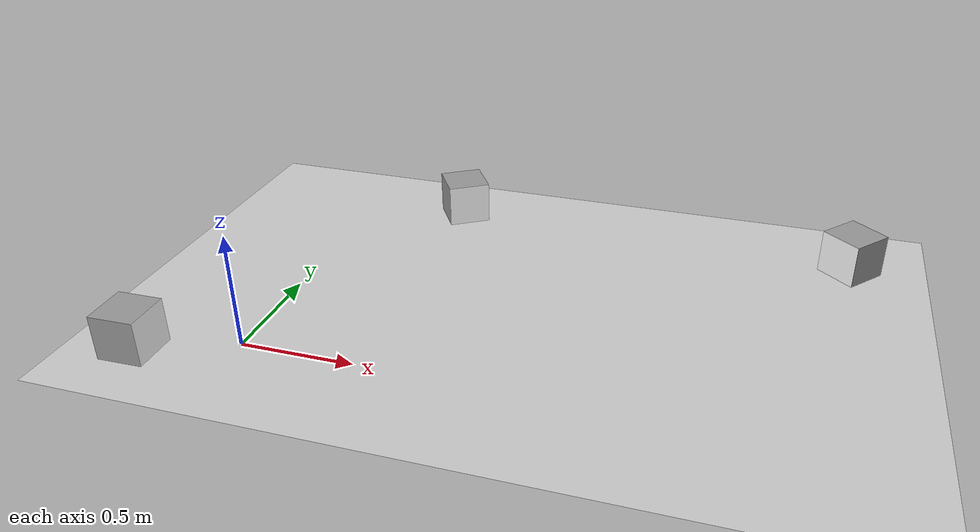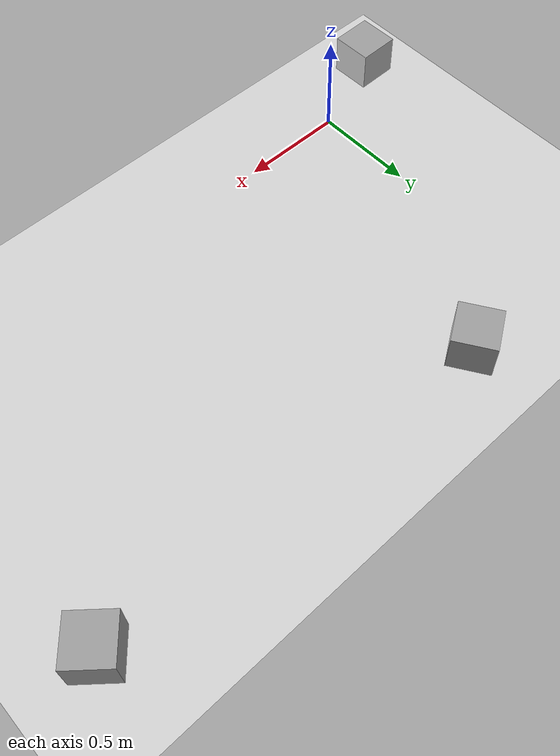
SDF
<sdf version="1.7">
 <world name="default">
  <model name="ground_plane">
   <static>1</static>
   <link name="link">
    <collision name="collision">
     <geometry><plane><normal>0 0 1</normal><size>100 100</size></plane></geometry>
     <surface>
      <contact><collide_bitmask>65535</collide_bitmask></contact>
      <friction><ode><mu>100</mu><mu2>50</mu2></ode></friction>
     </surface>
    </collision>
    <visual name="visual">
     <cast_shadows>0</cast_shadows>
     <geometry><plane><normal>0 0 1</normal><size>100 100</size></plane></geometry>
     <material>
      <script><uri>file://media/materials/scripts/gazebo.material</uri><name>Gazebo/Grey</name></script>
     </material>
    </visual>
   </link>
  </model>
  <model name="marker20_box">
   <link name="marker">
    <inertial>
     <mass>0.1</mass>
     <inertia><ixx>0</ixx><ixy>0</ixy><ixz>0</ixz><iyy>0</iyy><iyz>0</iyz><izz>0</izz></inertia>
    </inertial>
    <self_collide>1</self_collide>
    <pose>-0.76428 -0.101106 0.120004 -0.015494 1.56996 -0.015507</pose>
    <visual name="visual">
     <geometry><box><size>0.2 0.2 0.001</size></box></geometry>
     <material>
      <script>
       <uri>model://marker20/material/scripts</uri>
       <uri>model://marker20/material/textures</uri>
       <name>Aruco/marker20</name>
      </script>
      <shader type="pixel"><normal_map>__default__</normal_map></shader>
      <emissive>0 0 0 1</emissive>
      <ambient>1 1 1 1</ambient>
      <diffuse>1 1 1 1</diffuse>
      <specular>0 0 0 1</specular>
     </material>
    </visual>
    <collision name="collision">
     <geometry><box><size>0.2 0.2 0.02</size></box></geometry>
     <surface>
      <friction>
       <ode><mu>1</mu><mu2>1</mu2><fdir1>0 0 0</fdir1><slip1>0</slip1><slip2>0</slip2></ode>
       <torsional>
        <coefficient>1</coefficient>
        <patch_radius>0</patch_radius>
        <surface_radius>0</surface_radius>
        <use_patch_radius>1</use_patch_radius>
        <ode><slip>0</slip></ode>
       </torsional>
      </friction>
      <bounce><restitution_coefficient>0</restitution_coefficient><threshold>1e+06</threshold></bounce>
      <contact>
       <collide_without_contact>0</collide_without_contact>
       <collide_without_contact_bitmask>1</collide_without_contact_bitmask>
       <collide_bitmask>1</collide_bitmask>
       <ode>
        <soft_cfm>0</soft_cfm>
        <soft_erp>0.2</soft_erp>
        <kp>1e+13</kp>
        <kd>1</kd>
        <max_vel>0.01</max_vel>
        <min_depth>0</min_depth>
       </ode>
       <bullet>
        <split_impulse>1</split_impulse>
        <split_impulse_penetration_threshold>-0.01</split_impulse_penetration_threshold>
        <soft_cfm>0</soft_cfm>
        <soft_erp>0.2</soft_erp>
        <kp>1e+13</kp>
        <kd>1</kd>
       </bullet>
      </contact>
     </surface>
    </collision>
   </link>
   <link name="link_1">
    <inertial>
     <mass>1</mass>
     <inertia>
      <ixx>0.166667</ixx>
      <ixy>0</ixy>
      <ixz>0</ixz>
      <iyy>0.166667</iyy>
      <iyz>0</iyz>
      <izz>0.166667</izz>
     </inertia>
    </inertial>
    <pose>-0.86428 -0.101106 0.12 -1.3e-05 -4.2e-05 0</pose>
    <visual name="visual">
     <geometry><box><size>0.2 0.2 0.2</size></box></geometry>
     <material>
      <lighting>1</lighting>
      <script><uri>file://media/materials/scripts/gazebo.material</uri><name>Gazebo/Grey</name></script>
      <shader type="pixel"><normal_map>__default__</normal_map></shader>
      <emissive>0 0 0 1</emissive>
      <ambient>0.3 0.3 0.3 1</ambient>
      <diffuse>0.7 0.7 0.7 1</diffuse>
      <specular>0.01 0.01 0.01 1</specular>
     </material>
    </visual>
    <collision name="collision">
     <geometry><box><size>0.2 0.2 0.2</size></box></geometry>
     <surface>
      <friction>
       <ode><mu>1</mu><mu2>1</mu2><fdir1>0 0 0</fdir1><slip1>0</slip1><slip2>0</slip2></ode>
       <torsional>
        <coefficient>1</coefficient>
        <patch_radius>0</patch_radius>
        <surface_radius>0</surface_radius>
        <use_patch_radius>1</use_patch_radius>
        <ode><slip>0</slip></ode>
       </torsional>
      </friction>
      <bounce><restitution_coefficient>0</restitution_coefficient><threshold>1e+06</threshold></bounce>
      <contact>
       <collide_without_contact>0</collide_without_contact>
       <collide_without_contact_bitmask>1</collide_without_contact_bitmask>
       <collide_bitmask>1</collide_bitmask>
       <ode>
        <soft_cfm>0</soft_cfm>
        <soft_erp>0.2</soft_erp>
        <kp>1e+13</kp>
        <kd>1</kd>
        <max_vel>0.01</max_vel>
        <min_depth>0</min_depth>
       </ode>
       <bullet>
        <split_impulse>1</split_impulse>
        <split_impulse_penetration_threshold>-0.01</split_impulse_penetration_threshold>
        <soft_cfm>0</soft_cfm>
        <soft_erp>0.2</soft_erp>
        <kp>1e+13</kp>
        <kd>1</kd>
       </bullet>
      </contact>
     </surface>
    </collision>
   </link>
   <joint name="link_1_JOINT_3" type="fixed">
    <parent>link_1</parent>
    <child>marker</child>
    <physics>
     <ode><limit><cfm>0</cfm><erp>0.2</erp></limit><suspension><cfm>0</cfm><erp>0.2</erp></suspension></ode>
    </physics>
   </joint>
   <static>0</static>
   <pose>0.462113 -0.038567 -0.020009 1.6e-05 1.8e-05 0.018585</pose>
  </model>
  <model name="marker23_box">
   <link name="marker">
    <inertial>
     <mass>0.1</mass>
     <inertia><ixx>0</ixx><ixy>0</ixy><ixz>0</ixz><iyy>0</iyy><iyz>0</iyz><izz>0</izz></inertia>
    </inertial>
    <self_collide>1</self_collide>
    <pose>-0.76428 -0.101106 0.120004 -0.015494 1.56996 -0.015507</pose>
    <visual name="visual">
     <geometry><box><size>0.2 0.2 0.001</size></box></geometry>
     <material>
      <script>
       <uri>model://marker23/material/scripts</uri>
       <uri>model://marker23/material/textures</uri>
       <name>Aruco/marker23</name>
      </script>
      <shader type="pixel"><normal_map>__default__</normal_map></shader>
      <emissive>0 0 0 1</emissive>
      <ambient>1 1 1 1</ambient>
      <diffuse>1 1 1 1</diffuse>
      <specular>0 0 0 1</specular>
     </material>
    </visual>
    <collision name="collision">
     <geometry><box><size>0.2 0.2 0.02</size></box></geometry>
     <surface>
      <friction>
       <ode><mu>1</mu><mu2>1</mu2><fdir1>0 0 0</fdir1><slip1>0</slip1><slip2>0</slip2></ode>
       <torsional>
        <coefficient>1</coefficient>
        <patch_radius>0</patch_radius>
        <surface_radius>0</surface_radius>
        <use_patch_radius>1</use_patch_radius>
        <ode><slip>0</slip></ode>
       </torsional>
      </friction>
      <bounce><restitution_coefficient>0</restitution_coefficient><threshold>1e+06</threshold></bounce>
      <contact>
       <collide_without_contact>0</collide_without_contact>
       <collide_without_contact_bitmask>1</collide_without_contact_bitmask>
       <collide_bitmask>1</collide_bitmask>
       <ode>
        <soft_cfm>0</soft_cfm>
        <soft_erp>0.2</soft_erp>
        <kp>1e+13</kp>
        <kd>1</kd>
        <max_vel>0.01</max_vel>
        <min_depth>0</min_depth>
       </ode>
       <bullet>
        <split_impulse>1</split_impulse>
        <split_impulse_penetration_threshold>-0.01</split_impulse_penetration_threshold>
        <soft_cfm>0</soft_cfm>
        <soft_erp>0.2</soft_erp>
        <kp>1e+13</kp>
        <kd>1</kd>
       </bullet>
      </contact>
     </surface>
    </collision>
   </link>
   <link name="link_1">
    <inertial>
     <mass>1</mass>
     <inertia>
      <ixx>0.166667</ixx>
      <ixy>0</ixy>
      <ixz>0</ixz>
      <iyy>0.166667</iyy>
      <iyz>0</iyz>
      <izz>0.166667</izz>
     </inertia>
    </inertial>
    <pose>-0.86428 -0.101106 0.12 -1.3e-05 -4.2e-05 0</pose>
    <visual name="visual">
     <geometry><box><size>0.2 0.2 0.2</size></box></geometry>
     <material>
      <lighting>1</lighting>
      <script><uri>file://media/materials/scripts/gazebo.material</uri><name>Gazebo/Grey</name></script>
      <shader type="pixel"><normal_map>__default__</normal_map></shader>
      <emissive>0 0 0 1</emissive>
      <ambient>0.3 0.3 0.3 1</ambient>
      <diffuse>0.7 0.7 0.7 1</diffuse>
      <specular>0.01 0.01 0.01 1</specular>
     </material>
    </visual>
    <collision name="collision">
     <geometry><box><size>0.2 0.2 0.2</size></box></geometry>
     <surface>
      <friction>
       <ode><mu>1</mu><mu2>1</mu2><fdir1>0 0 0</fdir1><slip1>0</slip1><slip2>0</slip2></ode>
       <torsional>
        <coefficient>1</coefficient>
        <patch_radius>0</patch_radius>
        <surface_radius>0</surface_radius>
        <use_patch_radius>1</use_patch_radius>
        <ode><slip>0</slip></ode>
       </torsional>
      </friction>
      <bounce><restitution_coefficient>0</restitution_coefficient><threshold>1e+06</threshold></bounce>
      <contact>
       <collide_without_contact>0</collide_without_contact>
       <collide_without_contact_bitmask>1</collide_without_contact_bitmask>
       <collide_bitmask>1</collide_bitmask>
       <ode>
        <soft_cfm>0</soft_cfm>
        <soft_erp>0.2</soft_erp>
        <kp>1e+13</kp>
        <kd>1</kd>
        <max_vel>0.01</max_vel>
        <min_depth>0</min_depth>
       </ode>
       <bullet>
        <split_impulse>1</split_impulse>
        <split_impulse_penetration_threshold>-0.01</split_impulse_penetration_threshold>
        <soft_cfm>0</soft_cfm>
        <soft_erp>0.2</soft_erp>
        <kp>1e+13</kp>
        <kd>1</kd>
       </bullet>
      </contact>
     </surface>
    </collision>
   </link>
   <joint name="link_1_JOINT_3" type="fixed">
    <parent>link_1</parent>
    <child>marker</child>
    <physics>
     <ode><limit><cfm>0</cfm><erp>0.2</erp></limit><suspension><cfm>0</cfm><erp>0.2</erp></suspension></ode>
    </physics>
   </joint>
   <static>0</static>
   <pose>1.90893 0.605786 -0.020007 9e-06 1.7e-05 -2.2812</pose>
  </model>
  <model name="marker24_box">
   <link name="marker">
    <inertial>
     <mass>0.1</mass>
     <inertia><ixx>0</ixx><ixy>0</ixy><ixz>0</ixz><iyy>0</iyy><iyz>0</iyz><izz>0</izz></inertia>
    </inertial>
    <self_collide>1</self_collide>
    <pose>-0.76428 -0.101106 0.120004 -0.015494 1.56996 -0.015507</pose>
    <visual name="visual">
     <geometry><box><size>0.2 0.2 0.001</size></box></geometry>
     <material>
      <script>
       <uri>model://marker24/material/scripts</uri>
       <uri>model://marker24/material/textures</uri>
       <name>Aruco/marker24</name>
      </script>
      <shader type="pixel"><normal_map>__default__</normal_map></shader>
      <emissive>0 0 0 1</emissive>
      <ambient>1 1 1 1</ambient>
      <diffuse>1 1 1 1</diffuse>
      <specular>0 0 0 1</specular>
     </material>
    </visual>
    <collision name="collision">
     <geometry><box><size>0.2 0.2 0.02</size></box></geometry>
     <surface>
      <friction>
       <ode><mu>1</mu><mu2>1</mu2><fdir1>0 0 0</fdir1><slip1>0</slip1><slip2>0</slip2></ode>
       <torsional>
        <coefficient>1</coefficient>
        <patch_radius>0</patch_radius>
        <surface_radius>0</surface_radius>
        <use_patch_radius>1</use_patch_radius>
        <ode><slip>0</slip></ode>
       </torsional>
      </friction>
      <bounce><restitution_coefficient>0</restitution_coefficient><threshold>1e+06</threshold></bounce>
      <contact>
       <collide_without_contact>0</collide_without_contact>
       <collide_without_contact_bitmask>1</collide_without_contact_bitmask>
       <collide_bitmask>1</collide_bitmask>
       <ode>
        <soft_cfm>0</soft_cfm>
        <soft_erp>0.2</soft_erp>
        <kp>1e+13</kp>
        <kd>1</kd>
        <max_vel>0.01</max_vel>
        <min_depth>0</min_depth>
       </ode>
       <bullet>
        <split_impulse>1</split_impulse>
        <split_impulse_penetration_threshold>-0.01</split_impulse_penetration_threshold>
        <soft_cfm>0</soft_cfm>
        <soft_erp>0.2</soft_erp>
        <kp>1e+13</kp>
        <kd>1</kd>
       </bullet>
      </contact>
     </surface>
    </collision>
   </link>
   <link name="link_1">
    <inertial>
     <mass>1</mass>
     <inertia>
      <ixx>0.166667</ixx>
      <ixy>0</ixy>
      <ixz>0</ixz>
      <iyy>0.166667</iyy>
      <iyz>0</iyz>
      <izz>0.166667</izz>
     </inertia>
    </inertial>
    <pose>-0.86428 -0.101106 0.12 -1.3e-05 -4.2e-05 0</pose>
    <visual name="visual">
     <geometry><box><size>0.2 0.2 0.2</size></box></geometry>
     <material>
      <lighting>1</lighting>
      <script><uri>file://media/materials/scripts/gazebo.material</uri><name>Gazebo/Grey</name></script>
      <shader type="pixel"><normal_map>__default__</normal_map></shader>
      <emissive>0 0 0 1</emissive>
      <ambient>0.3 0.3 0.3 1</ambient>
      <diffuse>0.7 0.7 0.7 1</diffuse>
      <specular>0.01 0.01 0.01 1</specular>
     </material>
    </visual>
    <collision name="collision">
     <geometry><box><size>0.2 0.2 0.2</size></box></geometry>
     <surface>
      <friction>
       <ode><mu>1</mu><mu2>1</mu2><fdir1>0 0 0</fdir1><slip1>0</slip1><slip2>0</slip2></ode>
       <torsional>
        <coefficient>1</coefficient>
        <patch_radius>0</patch_radius>
        <surface_radius>0</surface_radius>
        <use_patch_radius>1</use_patch_radius>
        <ode><slip>0</slip></ode>
       </torsional>
      </friction>
      <bounce><restitution_coefficient>0</restitution_coefficient><threshold>1e+06</threshold></bounce>
      <contact>
       <collide_without_contact>0</collide_without_contact>
       <collide_without_contact_bitmask>1</collide_without_contact_bitmask>
       <collide_bitmask>1</collide_bitmask>
       <ode>
        <soft_cfm>0</soft_cfm>
        <soft_erp>0.2</soft_erp>
        <kp>1e+13</kp>
        <kd>1</kd>
        <max_vel>0.01</max_vel>
        <min_depth>0</min_depth>
       </ode>
       <bullet>
        <split_impulse>1</split_impulse>
        <split_impulse_penetration_threshold>-0.01</split_impulse_penetration_threshold>
        <soft_cfm>0</soft_cfm>
        <soft_erp>0.2</soft_erp>
        <kp>1e+13</kp>
        <kd>1</kd>
       </bullet>
      </contact>
     </surface>
    </collision>
   </link>
   <joint name="link_1_JOINT_3" type="fixed">
    <parent>link_1</parent>
    <child>marker</child>
    <physics>
     <ode><limit><cfm>0</cfm><erp>0.2</erp></limit><suspension><cfm>0</cfm><erp>0.2</erp></suspension></ode>
    </physics>
   </joint>
   <static>0</static>
   <pose>1.03845 0.717434 -0.020006 2.1e-05 1.8e-05 -0.99811</pose>
  </model>
 </world>
</sdf>
